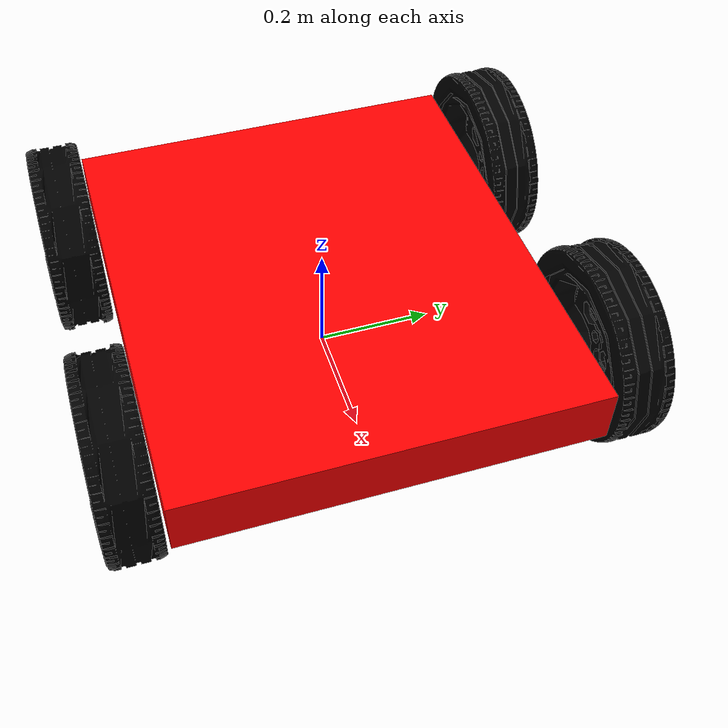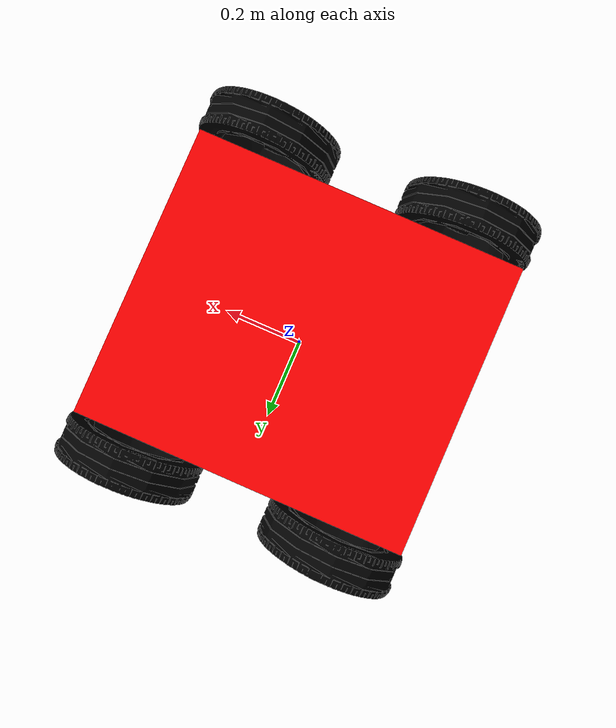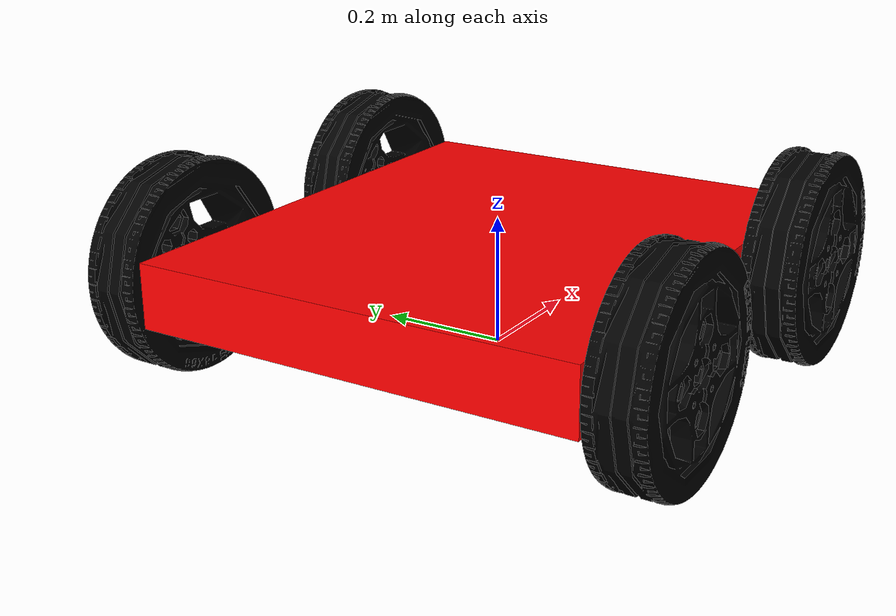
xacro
<?xml version="1.0"?>

<robot xmlns:xacro="http://www.ros.org/wiki/xacro" name="rover">

 <material name="blue">
    <color rgba="0 0 0.8 1"/>
  </material>
  <material name="black">
    <color rgba="0 0 0 1"/>
    <texture filename =""/>
  </material>
  <material name="white">
    <color rgba="1 1 1 1"/>
  </material>
  <material name="red">
    <color rgba="1 0 0 1"/>
  </material>

    <link name="base_footprint"/>

    <xacro:property name="constant" value="${1.0/12.0}"/>
    <xacro:property name="mass"     value="1.0"/>
    <xacro:property name="width"    value="0.8"/>
    <xacro:property name="width_sq"   value="${width*width}"/>
    <xacro:property name="height"   value="0.1"/>
    <xacro:property name="height_sq"   value="${height*height}"/>
    <xacro:property name="depth"    value="0.7"/>
    <xacro:property name="depth_sq"   value="${depth*depth}"/>
    <!-- Body-->
    <link name="base_link">
        <visual>
            <geometry>
                <box size="0.8 0.7 0.1"/>
            </geometry>
            <material name="red"/>
        </visual>
        <collision>
            <origin xyz="0.0 0.0 0.0" rpy="0.0 0.0 0.0"/>
            <geometry>
                <box size="${width} ${depth} ${height}"/>
            </geometry>
        </collision>
        <inertial>
                <origin xyz="0.0 0.0 0.0" rpy="0.0 0.0 0.0"/>
                <mass value="1.0"/>
                <inertia ixx="${constant*mass*(height_sq + depth_sq) }" ixy="0.0" ixz="0.0"
                                   iyy="${constant*mass*(width*width + height*height)}" iyz="0.0"
                                             izz="${constant*mass*(width*width + depth*depth)}"/>
            </inertial>
    </link>
    <joint name="base_joint" type="fixed">
        <parent link="base_footprint"/>
        <child link="base_link"/>
        <origin rpy="0 0 0" xyz="0.0 0.0 0.135" />
        <axis xyz="0.0 0.0 0.0"/>
    </joint>

    <xacro:macro name="wheel" params="name x y side">
        <link name="${name}_link">
            <inertial>
                <origin xyz="0.0 0.0 0.0" rpy="0.0 0.0 0.0"/>
                <mass value="0.5"/>
                <inertia ixx="0.0" ixy="0.0" ixz="0.0" iyy="0.0" iyz="0.0" izz="0.0"/>
            </inertial>
            <visual name="">
                <origin xyz="0.0 0.0 0.0" rpy="0.0 0.0 0.0"/>
                <geometry>
                    <mesh filename="package://mobile_robot/meshes/${side}_tire.stl" scale="0.005 0.005 0.005"/>
                </geometry>
                <material name="black"/>
            </visual>
            <collision>
                <origin xyz="0.0 0.0 0.0" rpy="0.0 0.0 0.0"/>
                <geometry>
                    <mesh filename="package://mobile_robot/meshes/${side}_tire.stl" scale="0.005 0.005 0.005"/>
                </geometry>
            </collision>
        </link>
        <joint name="${name}_joint" type="continuous">
            <parent link="base_link"/>
            <child link="${name}_link"/>
            <origin rpy="0 0 0" xyz="${x} ${y} 0.0"/>
            <axis xyz="0.0 1.0 0.0"/>
        </joint>
    </xacro:macro>

    <!-- Front Right Wheel -->
    <xacro:wheel name="wheel_front_right" x="-0.25" y="0.4" side="right"/>
    <!-- Rear Left Wheel -->
    <xacro:wheel name="wheel_rear_left" x="0.25" y="-0.4" side="left"/>
    <!-- Rear Right Wheel -->
    <xacro:wheel name="wheel_rear_right" x="0.25" y="0.4" side="right"/>
    <!-- Front Left Wheel -->
    <xacro:wheel name="wheel_front_left" x="-0.25" y="-0.4" side="left"/>

</robot>
